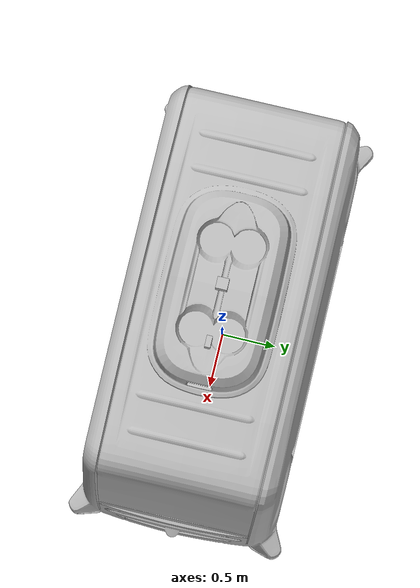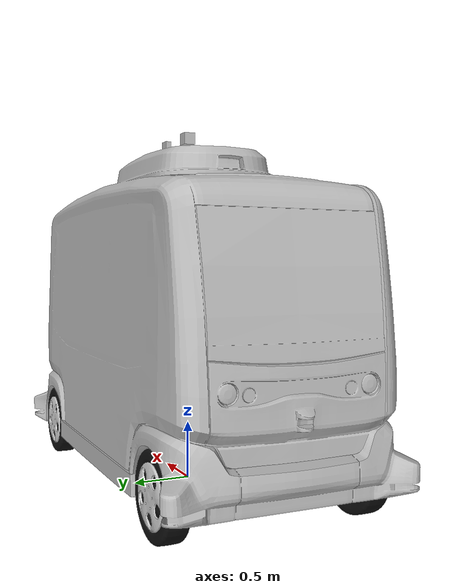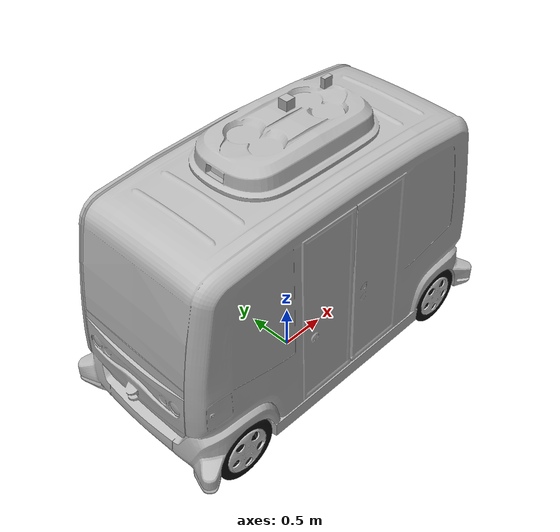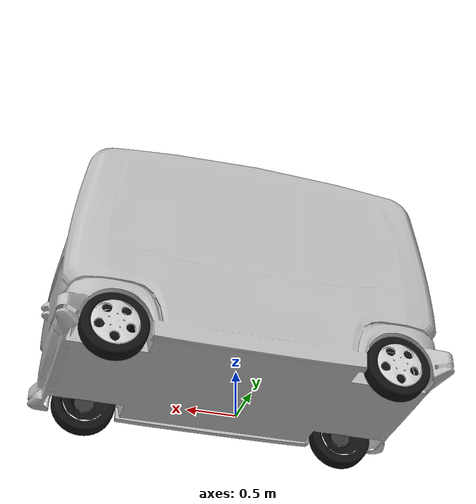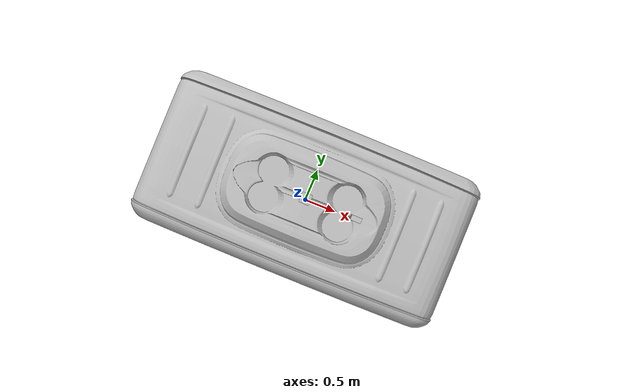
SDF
<?xml version="1.0"?>
<sdf version="1.6">

  <model name='gen0_model'>
  <!-- Define robot links -->
    <link name="base_link">
        <pose>0 0 0 0 0 0</pose>
        <visual name='visual'>
            <pose>0 0 0 0 0 -1.57079633</pose>
            <geometry>
                <mesh>
                    <uri>file:///home/av-lab/Documents/GitHub/ezmile_gen0/gen0_simulator/src/gen0_main/meshes/gen0_colored.dae</uri>
                    <scale>1 1 1</scale>
                </mesh>
            </geometry>
        </visual>
        <collision name='collision_base_link'>
            <pose>0 0 0 0 0 -1.57079633</pose>
            <geometry>
                <mesh>
                    <uri>file:///home/av-lab/Documents/GitHub/ezmile_gen0/gen0_simulator/src/gen0_main/meshes/gen0_colored.dae</uri>
                    <scale>1 1 1</scale>
                </mesh>
            </geometry>
        </collision>
    </link>

    <link name="main_mass">
        <pose>0 0 0 0 0 0</pose>
        <inertial>
            <mass>1703.239</mass> <!-- Mass value is incorrect as the intertias are wrong-->
            <inertia>
                <ixx>347.195805</ixx>
                <ixy>-11.4914985</ixy>
                <ixz>18.5070628</ixz>
                <iyy>2330.10026</iyy>
                <iyz>3.97814264</iyz>
                <izz>2529.41827</izz>
          </inertia>
        </inertial>
    </link>

    <link name="back_right_steering_link">
        <pose>-1.4 -0.7925 0.33 0 0 0</pose>
        <inertial>
            <mass>50.00</mass>
            <inertia>
                <ixx>0.25</ixx>
                <ixy>0</ixy>
                <ixz>0</ixz>
                <iyy>0.1354</iyy>
                <iyz>0</iyz>
                <izz>0.1354</izz>
            </inertia>
        </inertial>
        <visual name='visual_back_right_steering'>
            <pose>0 0 0 1.570796 0 0</pose>
            <geometry>
                <cylinder>
                    <length>0.05</length>
                    <radius>0.1</radius>
                </cylinder>
            </geometry>
            <material>
                <ambient>0.2 0.2 0.2 1</ambient>
                <diffuse>0.2 0.2 0.2 1</diffuse>
                <specular>0.2 0.2 0.2 1</specular>
          </material>
        </visual>
        <collision name='collision_back_right_steering'>
            <pose>0 0 0 1.570796 0 0</pose>
	        <geometry>
                <cylinder>
                    <length>0.05</length>
                    <radius>0.1</radius>
                </cylinder>
       		</geometry>
        </collision>
    </link>

    <link name="back_right_wheel_link">
        <pose>-1.4 -0.7925 0.33 0 0 -1.570796</pose>
        <inertial>
            <mass>20.00</mass>
            <inertia>
            <ixx>1.089</ixx>
            <ixy>0</ixy>
            <ixz>0</ixz>
            <iyy>0.5985</iyy>
            <iyz>0</iyz>
            <izz>0.5985</izz>
            </inertia>
        </inertial>
        <visual name='visual_back_right_wheel'>
            <geometry>
                <mesh>
                    <uri>file:///home/av-lab/Documents/GitHub/ezmile_gen0/gen0_simulator/src/gen0_main/meshes/gen0_wheels.dae</uri>
                    <scale>1 1 1</scale>
                </mesh>
            </geometry>
        </visual>
        <collision name='collision_back_right_wheel'>
            <pose>0 0 0 0 1.570796 0</pose>
            <geometry>
                <cylinder>
                    <length>0.18</length>
                    <radius>0.33</radius>
                </cylinder>
            </geometry>
           <surface>
                <friction>
                    <ode>
                        <mu>10000000</mu>
                        <mu2>7000</mu2>
                    </ode>
                </friction>
                <bounce>
                    <restitution_coefficient>0.0</restitution_coefficient>
                </bounce>
                <contact>
                    <ode>
                        <soft_cfm>0.001</soft_cfm>
                        <soft_erp>0.5</soft_erp>
                        <kp>10000000</kp>
                        <kd>1</kd>
                    </ode>
                </contact>
            </surface>
        </collision>

    </link>

    <link name="back_left_steering_link">
        <pose>-1.4 0.7925 0.33 0 0 0</pose>
        <inertial>
            <mass>50.00</mass>
            <inertia>
            <ixx>0.25</ixx>
            <ixy>0</ixy>
            <ixz>0</ixz>
            <iyy>0.1354</iyy>
            <iyz>0</iyz>
            <izz>0.1354</izz>
            </inertia>
        </inertial>
        <visual name='visual_back_left_steering'>
            <pose>0 0 0 1.570796 0 0</pose>
            <geometry>
                <cylinder>
                    <length>0.05</length>
                    <radius>0.1</radius>
                </cylinder>
            </geometry>
            <material>
                <ambient>0.2 0.2 0.2 1</ambient>
                <diffuse>0.2 0.2 0.2 1</diffuse>
                <specular>0.2 0.2 0.2 1</specular>
            </material>
        </visual>
        <collision name='collision_back_left_steering'>
            <pose>0 0 0 1.570796 0 0</pose>
            <geometry>
                <cylinder>
                    <length>0.05</length>
                    <radius>0.1</radius>
                </cylinder>
            </geometry>
        </collision>
    </link>

    <link name="back_left_wheel_link">
        <pose>-1.4 0.7925 0.33 0 0 1.570796</pose>
        <inertial>
            <mass>20.00</mass>
            <inertia>
            <ixx>1.089</ixx>
            <ixy>0</ixy>
            <ixz>0</ixz>
            <iyy>0.5985</iyy>
            <iyz>0</iyz>
            <izz>0.5985</izz>
            </inertia>
        </inertial>
        <visual name='visual_back_left_wheel'>
            <geometry>
                <mesh>
                    <uri>file:///home/av-lab/Documents/GitHub/ezmile_gen0/gen0_simulator/src/gen0_main/meshes/gen0_wheels.dae</uri>
                    <scale>1 1 1</scale>
                </mesh>
            </geometry>
        </visual>
        <collision name='collision_back_left_wheel'>
            <pose>0 0 0 0 1.570796 0</pose>
            <geometry>
                <cylinder>
                    <length>0.18</length>
                    <radius>0.33</radius>
                </cylinder>
            </geometry>
           <surface>
                <friction>
                    <ode>
                        <mu>10000000</mu>
                        <mu2>7000</mu2>
                    </ode>
                </friction>
                <bounce>
                    <restitution_coefficient>0.0</restitution_coefficient>
                </bounce>
                <contact>
                    <ode>
                        <soft_cfm>0.001</soft_cfm>
                        <soft_erp>0.5</soft_erp>
                        <kp>10000000</kp>
                        <kd>1</kd>
                    </ode>
                </contact>
            </surface>
        </collision>
    </link>

    <link name="front_right_steering_link">
        <pose>1.4 -0.7925 0.33 0 0 0</pose>
        <inertial>
            <mass>50.00</mass>
            <inertia>
            <ixx>0.25</ixx>
            <ixy>0</ixy>
            <ixz>0</ixz>
            <iyy>0.1354</iyy>
            <iyz>0</iyz>
            <izz>0.1354</izz>
            </inertia>
        </inertial>
        <visual name='visual_front_right_steering'>
            <pose>0 0 0 1.570796 0 0</pose>
            <geometry>
                <cylinder>
                    <length>0.05</length>
                    <radius>0.1</radius>
                </cylinder>
            </geometry>
            <material>
                <ambient>0.2 0.2 0.2 1</ambient>
                <diffuse>0.2 0.2 0.2 1</diffuse>
                <specular>0.2 0.2 0.2 1</specular>
            </material>
        </visual>
        <collision name='collision_front_right_steering'>
            <pose>0 0 0 1.570796 0 0</pose>
            <geometry>
                <cylinder>
                    <length>0.05</length>
                    <radius>0.1</radius>
                </cylinder>
            </geometry>
        </collision>
    </link>

    <link name="front_right_wheel_link">
        <pose>1.4 -0.7925 0.33 0 0 -1.570796</pose>
        <inertial>
            <mass>20.00</mass>
            <inertia>
            <ixx>1.089</ixx>
            <ixy>0</ixy>
            <ixz>0</ixz>
            <iyy>0.5985</iyy>
            <iyz>0</iyz>
            <izz>0.5985</izz>
            </inertia>
        </inertial>
        <visual name='visual_front_right_wheel'>
            <geometry>
                <mesh>
                    <uri>file:///home/av-lab/Documents/GitHub/ezmile_gen0/gen0_simulator/src/gen0_main/meshes/gen0_wheels.dae</uri>
                    <scale>1 1 1</scale>
                </mesh>
            </geometry>
        </visual>
        <collision name='collision_front_right_wheel'>
            <pose>0 0 0 0 1.570796 0</pose>
            <geometry>
                <cylinder>
                    <length>0.18</length>
                    <radius>0.33</radius>
                </cylinder>
            </geometry>
           <surface>
                <friction>
                    <ode>
                        <mu>10000000</mu>
                        <mu2>7000</mu2>
                    </ode>
                </friction>
                <bounce>
                    <restitution_coefficient>0.0</restitution_coefficient>
                </bounce>
                <contact>
                    <ode>
                        <soft_cfm>0.001</soft_cfm>
                        <soft_erp>0.5</soft_erp>
                        <kp>10000000</kp>
                        <kd>1</kd>
                    </ode>
                </contact>
            </surface>
        </collision>
    </link>

    <link name="front_left_steering_link">
        <pose>1.4 0.7925 0.33 0 0 0</pose>
        <inertial>
            <mass>50.00</mass>
            <inertia>
            <ixx>0.25</ixx>
            <ixy>0</ixy>
            <ixz>0</ixz>
            <iyy>0.1354</iyy>
            <iyz>0</iyz>
            <izz>0.1354</izz>
            </inertia>
        </inertial>
        <visual name='visual_front_left_steering'>
            <pose>0 0 0 1.570796 0 0</pose>
            <geometry>
                <cylinder>
                    <length>0.05</length>
                    <radius>0.1</radius>
                </cylinder>
            </geometry>
            <material>
                <ambient>0.2 0.2 0.2 1</ambient>
                <diffuse>0.2 0.2 0.2 1</diffuse>
                <specular>0.2 0.2 0.2 1</specular>
            </material>
        </visual>
        <collision name='collision_front_left_steering'>
            <pose>0 0 0 1.570796 0 0</pose>
            <geometry>
                <cylinder>
                    <length>0.05</length>
                    <radius>0.1</radius>
                </cylinder>
            </geometry>
        </collision>
    </link>

    <link name="front_left_wheel_link">
        <pose>1.4 0.7925 0.33 0 0 1.570796</pose>
        <inertial>
            <mass>20.00</mass>
            <inertia>
            <ixx>1.089</ixx>
            <ixy>0</ixy>
            <ixz>0</ixz>
            <iyy>0.5985</iyy>
            <iyz>0</iyz>
            <izz>0.5985</izz>
            </inertia>
        </inertial>
        <visual name='visual_front_left_wheel'>
            <geometry>
                <mesh>
                    <uri>file:///home/av-lab/Documents/GitHub/ezmile_gen0/gen0_simulator/src/gen0_main/meshes/gen0_wheels.dae</uri>
                    <scale>1 1 1</scale>
                </mesh>
            </geometry>
        </visual>
        <collision name='collision_front_left_wheel'>
            <pose>0 0 0 0 1.570796 0</pose>
            <geometry>
                <cylinder>
                    <length>0.18</length>
                    <radius>0.33</radius>
                </cylinder>
            </geometry>
           <surface>
                <friction>
                    <ode>
                        <mu>10000000</mu>
                        <mu2>7000</mu2>
                    </ode>
                </friction>
                <bounce>
                    <restitution_coefficient>0.0</restitution_coefficient>
                </bounce>
                <contact>
                    <ode>
                        <soft_cfm>0.001</soft_cfm>
                        <soft_erp>0.5</soft_erp>
                        <kp>10000000</kp>
                        <kd>1</kd>
                    </ode>
                </contact>
            </surface>
        </collision>
    </link>

    <link name="lidar_link">
        <pose>0 0 3 0 0 0</pose>
        <inertial>
          <mass>0.1</mass>
          <inertia>
            <ixx>0.000166667</ixx>
            <iyy>0.000166667</iyy>
            <izz>0.000166667</izz>
          </inertia>
        </inertial>
        <collision name="lidar_collision">
          <geometry>
            <box>
              <size>0.1 0.1 0.1</size>
            </box>
          </geometry>
        </collision>
        <visual name="lidar_visual">
          <geometry>
            <box>
              <size>0.1 0.1 0.1</size>
            </box>
          </geometry>
        </visual>

        <sensor name='gpu_lidar' type='gpu_lidar'>
            <pose>0 0 0 0 0 0</pose>
            <topic>scan</topic>
            <ignition_frame_id>lidar_link</ignition_frame_id>
            <update_rate>10</update_rate>
            <lidar>
            <scan>
                <horizontal>
                <samples>512</samples>
                <resolution>1</resolution>
                <min_angle>-3.14</min_angle>
                <max_angle>3.14</max_angle>
                </horizontal>
                <vertical>
                <samples>64</samples>
                <resolution>1</resolution>
                <min_angle>-0.289724656</min_angle>
                <max_angle>0.289724656</max_angle>
                </vertical>
            </scan>
            <range>
                <min>1.5</min>
                <max>80.0</max>
                <resolution>0.03</resolution>
            </range>
            </lidar>
            <visualize>true</visualize>
        </sensor>
    </link>

    <link name="imu_link">
        <pose>0.5 0 3 0 0 0</pose>
        <inertial>
          <mass>0.1</mass>
          <inertia>
            <ixx>0.000166667</ixx>
            <iyy>0.000166667</iyy>
            <izz>0.000166667</izz>
          </inertia>
        </inertial>
        <collision name="imu_collision">
          <geometry>
            <box>
              <size>0.1 0.05 0.1</size>
            </box>
          </geometry>
        </collision>
        <visual name="imu_visual">
          <geometry>
            <box>
              <size>0.1 0.05 0.1</size>
            </box>
          </geometry>
        </visual>
        <sensor name='imu_sensor' type='imu'>
            <always_on>1</always_on>
            <update_rate>1</update_rate>
            <visualize>true</visualize>
            <topic>imu</topic>
        </sensor>
    </link>

    <joint name="inertial_joint" type="fixed">
        <parent>base_link</parent>
        <child>main_mass</child>
    </joint>

    <joint name='lidar_joint' type='fixed'>
        <parent>base_link</parent>
        <child>lidar_link</child>
    </joint>

    <joint name='imu_joint' type='fixed'>
        <parent>base_link</parent>
        <child>imu_link</child>
    </joint>

    <joint name="back_right_steering_joint" type="revolute">
        <parent>base_link</parent>
        <child>back_right_steering_link</child>
       <axis>
            <xyz>0 0 1</xyz>
            <limit>
                <lower>-0.6</lower>
                <upper>0.6</upper>
                <velocity>1000</velocity>
                <effort>10000</effort>
            </limit>
        </axis>
    </joint>

    <joint name="back_right_wheel_joint" type="revolute">
        <parent>back_right_steering_link</parent>
        <child>back_right_wheel_link</child>
        <axis>
            <xyz>-1 0 0</xyz>
            <limit>
                <lower>-1.79769e+308</lower>
                <upper>1.79769e+308</upper>
                <effort>10000</effort>
                <velocity>5000</velocity>
            </limit>
        </axis>
        <dynamics>
            <damping>0.01</damping>
        </dynamics>
        <joint_properties>
            <damping>10</damping>
            <friction>1.0</friction>
        </joint_properties>
    </joint>

        <joint name="back_left_steering_joint" type="revolute">
        <parent>base_link</parent>
        <child>back_left_steering_link</child>
        <axis>
            <xyz>0 0 1</xyz>
            <limit>
                <lower>-0.6</lower>
                <upper>0.6</upper>
                <velocity>1000</velocity>
                <effort>10000</effort>
            </limit>
        </axis>
    </joint>

    <joint name="back_left_wheel_joint" type="revolute">
        <parent>back_left_steering_link</parent>
        <child>back_left_wheel_link</child>
        <axis>
            <xyz>1 0 0</xyz>
            <limit>
                <lower>-1.79769e+308</lower>
                <upper>1.79769e+308</upper>
                <effort>10000</effort>
                <velocity>5000</velocity>
            </limit>
        </axis>
        <dynamics>
            <damping>0.01</damping>
        </dynamics>
        <joint_properties>
            <damping>10</damping>
            <friction>1.0</friction>
        </joint_properties>
    </joint>

    <joint name="front_right_steering_joint" type="revolute">
        <parent>base_link</parent>
        <child>front_right_steering_link</child>
        <axis>
            <xyz>0 0 1</xyz>
            <limit>
                <lower>-0.6</lower>
                <upper>0.6</upper>
                <velocity>1000</velocity>
                <effort>10000</effort>
            </limit>
        </axis>
    </joint>

    <joint name="front_right_wheel_joint" type="revolute">
        <parent>front_right_steering_link</parent>
        <child>front_right_wheel_link</child>
        <axis>
            <xyz>-1 0 0</xyz>
            <limit>
                <lower>-1.79769e+308</lower>
                <upper>1.79769e+308</upper>
                <effort>10000</effort>
                <velocity>5000</velocity>
            </limit>
        </axis>
        <dynamics>
            <damping>0.01</damping>
        </dynamics>
        <joint_properties>
            <damping>10</damping>
            <friction>1.0</friction>
        </joint_properties>
    </joint>

    <joint name="front_left_steering_joint" type="revolute">
        <parent>base_link</parent>
        <child>front_left_steering_link</child>
        <axis>
            <xyz>0 0 1</xyz>
            <limit>
                <lower>-0.6</lower>
                <upper>0.6</upper>
                <velocity>1000</velocity>
                <effort>10000</effort>
            </limit>
        </axis>
    </joint>

    <joint name="front_left_wheel_joint" type="revolute">
        <parent>front_left_steering_link</parent>
        <child>front_left_wheel_link</child>
        <axis>
            <xyz>1 0 0</xyz>
            <limit>
                <lower>-1.79769e+308</lower>
                <upper>1.79769e+308</upper>
                <effort>10000</effort>
                <velocity>5000</velocity>
            </limit>
        </axis>
        <dynamics>
            <damping>0.01</damping>
        </dynamics>
        <joint_properties>
            <damping>10</damping>
            <friction>1.0</friction>
        </joint_properties>
    </joint>

    <plugin
        filename="ignition-gazebo-ackermann-steering-system"
        name="gz::sim::systems::AckermannSteering">
        <left_joint>back_left_wheel_joint</left_joint>
        <right_joint>back_right_wheel_joint</right_joint>
        <left_steering_joint>back_left_steering_joint</left_steering_joint>
        <right_steering_joint>back_right_steering_joint</right_steering_joint>
        <kingpin_width>1.0</kingpin_width>
        <steering_limit>0.6</steering_limit>
        <wheel_base>2.8</wheel_base>
        <wheel_separation>1.385</wheel_separation>
        <wheel_radius>0.33</wheel_radius>
        <min_velocity>-3</min_velocity>
        <max_velocity>3</max_velocity>
        <min_acceleration>-3</min_acceleration>
        <max_acceleration>3</max_acceleration>
    </plugin>

    <plugin
        filename="ignition-gazebo-joint-state-publisher-system"
        name="gz::sim::systems::JointStatePublisher">
    </plugin>

    <plugin
        filename="ignition-gazebo-joint-position-controller-system"
        name="gz::sim::systems::JointPositionController">
        <joint_name>front_left_steering_joint</joint_name>
        <topic>/model/gen0_model/joint/front_left_steering_joint/cmd_pos</topic>
        <p_gain>100</p_gain>
        <i_gain>0.01</i_gain>
        <d_gain>10.0</d_gain>
    </plugin>

    <plugin
        filename="ignition-gazebo-joint-position-controller-system"
        name="gz::sim::systems::JointPositionController">
        <joint_name>front_right_steering_joint</joint_name>
        <topic>/model/gen0_model/joint/front_right_steering_joint/cmd_pos</topic>
        <p_gain>100</p_gain>
        <i_gain>0.01</i_gain>
        <d_gain>10.0</d_gain>
    </plugin>

    <plugin
        filename="ignition-gazebo-pose-publisher-system"
        name="gz::sim::systems::PosePublisher">
        <publish_link_pose>true</publish_link_pose>
        <use_pose_vector_msg>true</use_pose_vector_msg>
        <publish_nested_model_pose>true</publish_nested_model_pose>
        <static_publisher>false</static_publisher>
    </plugin>

</model>

</sdf>
